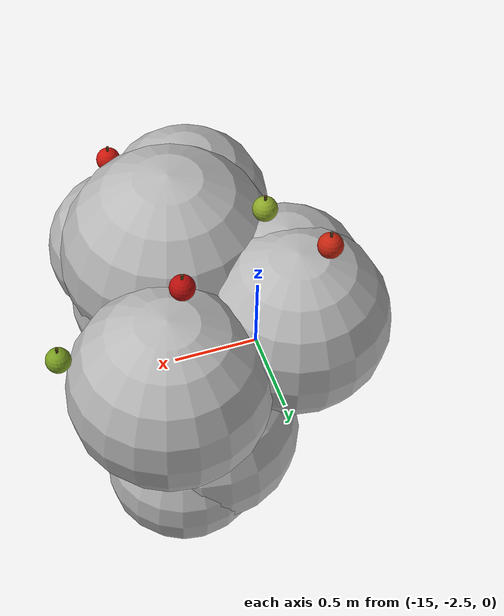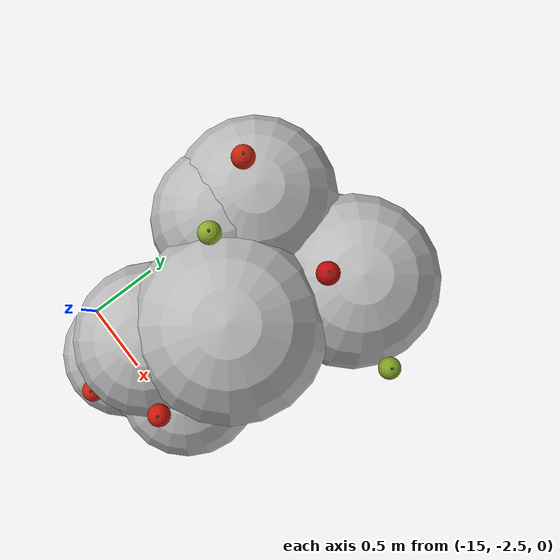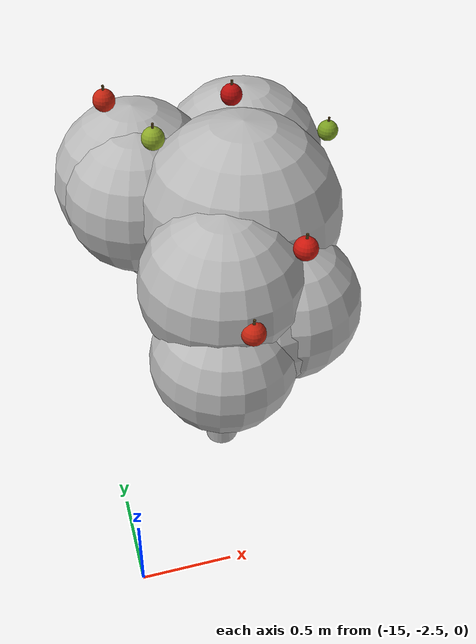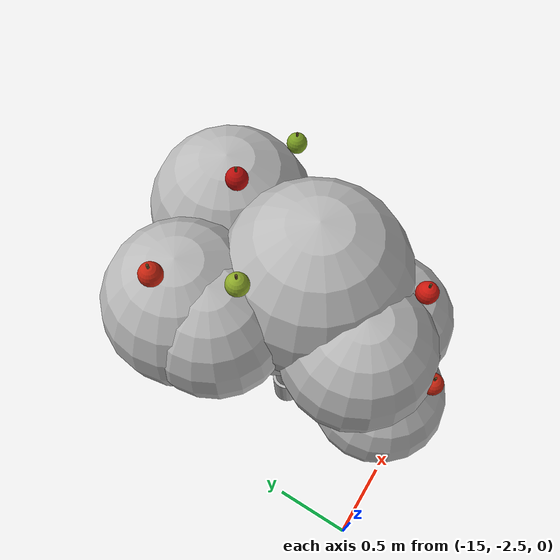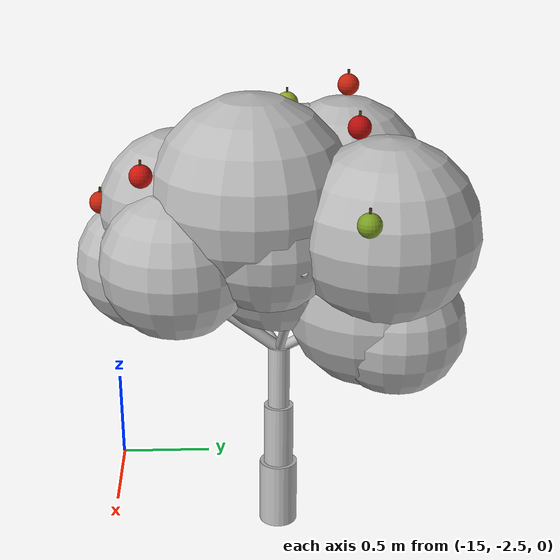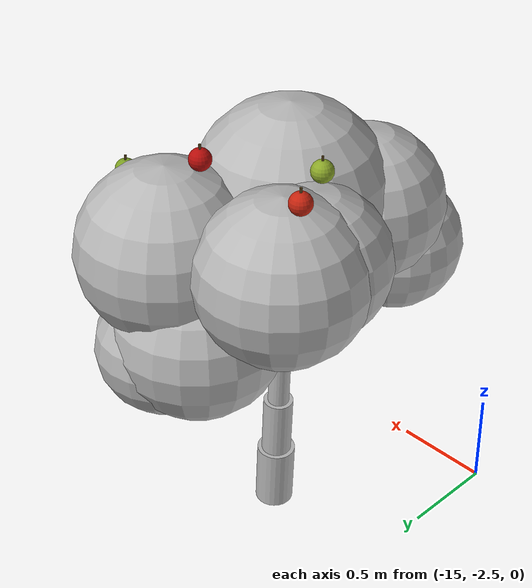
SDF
<sdf version="1.6">
 <world name="default">
  <model name="tree_r2_t1">
   <static>true</static>
   <link name="tree_r2_t1_trunk0">
    <pose>-14.3163 -1.6157 0.1642 -0.0051 -0.0521 0</pose>
    <collision name="tree_r2_t1_trunk0_c">
     <geometry><cylinder><radius>0.0985</radius><length>0.3480</length></cylinder></geometry>
    </collision>
    <visual name="tree_r2_t1_trunk0_v">
     <geometry><cylinder><radius>0.0985</radius><length>0.3480</length></cylinder></geometry>
     <material>
      <script>
       <uri>model://orchard/materials/scripts</uri>
       <uri>model://orchard/materials/textures</uri>
       <name>Orchard/Bark</name>
      </script>
     </material>
    </visual>
   </link>
   <link name="tree_r2_t1_trunk1">
    <pose>-14.3334 -1.6140 0.4925 -0.0051 -0.0521 0</pose>
    <visual name="tree_r2_t1_trunk1_v">
     <geometry><cylinder><radius>0.0768</radius><length>0.3480</length></cylinder></geometry>
     <material>
      <script>
       <uri>model://orchard/materials/scripts</uri>
       <uri>model://orchard/materials/textures</uri>
       <name>Orchard/Bark</name>
      </script>
     </material>
    </visual>
   </link>
   <link name="tree_r2_t1_trunk2">
    <pose>-14.3505 -1.6123 0.8208 -0.0051 -0.0521 0</pose>
    <visual name="tree_r2_t1_trunk2_v">
     <geometry><cylinder><radius>0.0551</radius><length>0.3480</length></cylinder></geometry>
     <material>
      <script>
       <uri>model://orchard/materials/scripts</uri>
       <uri>model://orchard/materials/textures</uri>
       <name>Orchard/Bark</name>
      </script>
     </material>
    </visual>
   </link>
   <link name="tree_r2_t1_br0">
    <pose>-14.1140 -1.5687 1.2986 0.0000 0.6704 0.1728</pose>
    <visual name="tree_r2_t1_br0_v">
     <geometry><cylinder><radius>0.0237</radius><length>0.8007</length></cylinder></geometry>
     <material>
      <script>
       <uri>model://orchard/materials/scripts</uri>
       <uri>model://orchard/materials/textures</uri>
       <name>Orchard/Bark</name>
      </script>
     </material>
    </visual>
   </link>
   <link name="tree_r2_t1_br1">
    <pose>-14.3491 -1.3482 1.1241 0.0000 1.0847 1.5328</pose>
    <visual name="tree_r2_t1_br1_v">
     <geometry><cylinder><radius>0.0277</radius><length>0.5959</length></cylinder></geometry>
     <material>
      <script>
       <uri>model://orchard/materials/scripts</uri>
       <uri>model://orchard/materials/textures</uri>
       <name>Orchard/Bark</name>
      </script>
     </material>
    </visual>
   </link>
   <link name="tree_r2_t1_br2">
    <pose>-14.6545 -1.4906 1.2355 0.0000 0.9052 2.7532</pose>
    <visual name="tree_r2_t1_br2_v">
     <geometry><cylinder><radius>0.0221</radius><length>0.8115</length></cylinder></geometry>
     <material>
      <script>
       <uri>model://orchard/materials/scripts</uri>
       <uri>model://orchard/materials/textures</uri>
       <name>Orchard/Bark</name>
      </script>
     </material>
    </visual>
   </link>
   <link name="tree_r2_t1_br3">
    <pose>-14.5337 -1.8411 1.2830 0.0000 0.7690 4.0622</pose>
    <visual name="tree_r2_t1_br3_v">
     <geometry><cylinder><radius>0.0243</radius><length>0.8298</length></cylinder></geometry>
     <material>
      <script>
       <uri>model://orchard/materials/scripts</uri>
       <uri>model://orchard/materials/textures</uri>
       <name>Orchard/Bark</name>
      </script>
     </material>
    </visual>
   </link>
   <link name="tree_r2_t1_br4">
    <pose>-14.3455 -1.8484 1.1767 0.0000 0.8911 4.7696</pose>
    <visual name="tree_r2_t1_br4_v">
     <geometry><cylinder><radius>0.0313</radius><length>0.6102</length></cylinder></geometry>
     <material>
      <script>
       <uri>model://orchard/materials/scripts</uri>
       <uri>model://orchard/materials/textures</uri>
       <name>Orchard/Bark</name>
      </script>
     </material>
    </visual>
   </link>
   <link name="tree_r2_t1_fol0">
    <pose>-14.3075 -2.1195 1.5104 0 0 0</pose>
    <visual name="tree_r2_t1_fol0_v">
     <geometry><sphere><radius>0.3658</radius></sphere></geometry>
     <material>
      <script>
       <uri>model://orchard/materials/scripts</uri>
       <uri>model://orchard/materials/textures</uri>
       <name>Orchard/Foliage3</name>
      </script>
     </material>
    </visual>
   </link>
   <link name="tree_r2_t1_fol1">
    <pose>-14.7255 -1.4474 1.7831 0 0 0</pose>
    <visual name="tree_r2_t1_fol1_v">
     <geometry><sphere><radius>0.3705</radius></sphere></geometry>
     <material>
      <script>
       <uri>model://orchard/materials/scripts</uri>
       <uri>model://orchard/materials/textures</uri>
       <name>Orchard/Foliage0</name>
      </script>
     </material>
    </visual>
   </link>
   <link name="tree_r2_t1_fol2">
    <pose>-14.2511 -1.1578 1.3036 0 0 0</pose>
    <visual name="tree_r2_t1_fol2_v">
     <geometry><sphere><radius>0.4318</radius></sphere></geometry>
     <material>
      <script>
       <uri>model://orchard/materials/scripts</uri>
       <uri>model://orchard/materials/textures</uri>
       <name>Orchard/Foliage2</name>
      </script>
     </material>
    </visual>
   </link>
   <link name="tree_r2_t1_fol3">
    <pose>-14.1313 -1.0527 1.2175 0 0 0</pose>
    <visual name="tree_r2_t1_fol3_v">
     <geometry><sphere><radius>0.3426</radius></sphere></geometry>
     <material>
      <script>
       <uri>model://orchard/materials/scripts</uri>
       <uri>model://orchard/materials/textures</uri>
       <name>Orchard/Foliage1</name>
      </script>
     </material>
    </visual>
   </link>
   <link name="tree_r2_t1_fol4">
    <pose>-14.5086 -2.2793 1.4188 0 0 0</pose>
    <visual name="tree_r2_t1_fol4_v">
     <geometry><sphere><radius>0.3469</radius></sphere></geometry>
     <material>
      <script>
       <uri>model://orchard/materials/scripts</uri>
       <uri>model://orchard/materials/textures</uri>
       <name>Orchard/Foliage0</name>
      </script>
     </material>
    </visual>
   </link>
   <link name="tree_r2_t1_fol5">
    <pose>-14.2892 -1.7439 1.8305 0 0 0</pose>
    <visual name="tree_r2_t1_fol5_v">
     <geometry><sphere><radius>0.4921</radius></sphere></geometry>
     <material>
      <script>
       <uri>model://orchard/materials/scripts</uri>
       <uri>model://orchard/materials/textures</uri>
       <name>Orchard/Foliage0</name>
      </script>
     </material>
    </visual>
   </link>
   <link name="tree_r2_t1_fol6">
    <pose>-14.1687 -2.1106 1.5371 0 0 0</pose>
    <visual name="tree_r2_t1_fol6_v">
     <geometry><sphere><radius>0.3660</radius></sphere></geometry>
     <material>
      <script>
       <uri>model://orchard/materials/scripts</uri>
       <uri>model://orchard/materials/textures</uri>
       <name>Orchard/Foliage1</name>
      </script>
     </material>
    </visual>
   </link>
   <link name="tree_r2_t1_fol7">
    <pose>-14.1780 -1.6685 1.6654 0 0 0</pose>
    <visual name="tree_r2_t1_fol7_v">
     <geometry><sphere><radius>0.3641</radius></sphere></geometry>
     <material>
      <script>
       <uri>model://orchard/materials/scripts</uri>
       <uri>model://orchard/materials/textures</uri>
       <name>Orchard/Foliage0</name>
      </script>
     </material>
    </visual>
   </link>
   <link name="tree_r2_t1_fol8">
    <pose>-14.7076 -1.2663 1.7783 0 0 0</pose>
    <visual name="tree_r2_t1_fol8_v">
     <geometry><sphere><radius>0.4197</radius></sphere></geometry>
     <material>
      <script>
       <uri>model://orchard/materials/scripts</uri>
       <uri>model://orchard/materials/textures</uri>
       <name>Orchard/Foliage0</name>
      </script>
     </material>
    </visual>
   </link>
   <link name="tree_r2_t1_fol9">
    <pose>-14.0971 -1.1233 1.7167 0 0 0</pose>
    <visual name="tree_r2_t1_fol9_v">
     <geometry><sphere><radius>0.4442</radius></sphere></geometry>
     <material>
      <script>
       <uri>model://orchard/materials/scripts</uri>
       <uri>model://orchard/materials/textures</uri>
       <name>Orchard/Foliage3</name>
      </script>
     </material>
    </visual>
   </link>
   <link name="tree_r2_t1_fol10">
    <pose>-14.4684 -2.0973 1.7108 0 0 0</pose>
    <visual name="tree_r2_t1_fol10_v">
     <geometry><sphere><radius>0.3946</radius></sphere></geometry>
     <material>
      <script>
       <uri>model://orchard/materials/scripts</uri>
       <uri>model://orchard/materials/textures</uri>
       <name>Orchard/Foliage3</name>
      </script>
     </material>
    </visual>
   </link>
   <link name="tree_r2_t1_fol11">
    <pose>-14.3487 -1.6159 1.5115 0 0 0</pose>
    <visual name="tree_r2_t1_fol11_v">
     <geometry><sphere><radius>0.3882</radius></sphere></geometry>
     <material>
      <script>
       <uri>model://orchard/materials/scripts</uri>
       <uri>model://orchard/materials/textures</uri>
       <name>Orchard/Foliage1</name>
      </script>
     </material>
    </visual>
   </link>
   <link name="tree_r2_t1_ap0">
    <pose>-14.4413 -2.4798 1.7541 0 0 0</pose>
    <visual name="tree_r2_t1_ap0_v">
     <geometry><sphere><radius>0.0550</radius></sphere></geometry>
     <material>
      <ambient>0.312 0.056 0.024 1.00</ambient>
      <diffuse>0.780 0.140 0.060 1.00</diffuse>
      <specular>0.45 0.35 0.32 1</specular>
     </material>
    </visual>
   </link>
   <link name="tree_r2_t1_st0">
    <pose>-14.4413 -2.4798 1.8063 0 0 0</pose>
    <visual name="tree_r2_t1_st0_v">
     <geometry><cylinder><radius>0.0060</radius><length>0.0500</length></cylinder></geometry>
     <material><ambient>0.128 0.096 0.040 1.00</ambient><diffuse>0.320 0.240 0.100 1.00</diffuse></material>
    </visual>
   </link>
   <link name="tree_r2_t1_ap1">
    <pose>-14.2001 -1.2528 2.1819 0 0 0</pose>
    <visual name="tree_r2_t1_ap1_v">
     <geometry><sphere><radius>0.0550</radius></sphere></geometry>
     <material>
      <ambient>0.288 0.020 0.016 1.00</ambient>
      <diffuse>0.720 0.050 0.040 1.00</diffuse>
      <specular>0.45 0.35 0.32 1</specular>
     </material>
    </visual>
   </link>
   <link name="tree_r2_t1_st1">
    <pose>-14.2001 -1.2528 2.2341 0 0 0</pose>
    <visual name="tree_r2_t1_st1_v">
     <geometry><cylinder><radius>0.0060</radius><length>0.0500</length></cylinder></geometry>
     <material><ambient>0.128 0.096 0.040 1.00</ambient><diffuse>0.320 0.240 0.100 1.00</diffuse></material>
    </visual>
   </link>
   <link name="tree_r2_t1_ap2">
    <pose>-13.6618 -1.2593 1.9058 0 0 0</pose>
    <visual name="tree_r2_t1_ap2_v">
     <geometry><sphere><radius>0.0550</radius></sphere></geometry>
     <material>
      <ambient>0.192 0.248 0.052 1.00</ambient>
      <diffuse>0.480 0.620 0.130 1.00</diffuse>
      <specular>0.45 0.35 0.32 1</specular>
     </material>
    </visual>
   </link>
   <link name="tree_r2_t1_st2">
    <pose>-13.6618 -1.2593 1.9581 0 0 0</pose>
    <visual name="tree_r2_t1_st2_v">
     <geometry><cylinder><radius>0.0060</radius><length>0.0500</length></cylinder></geometry>
     <material><ambient>0.128 0.096 0.040 1.00</ambient><diffuse>0.320 0.240 0.100 1.00</diffuse></material>
    </visual>
   </link>
   <link name="tree_r2_t1_ap3">
    <pose>-14.6620 -1.5618 2.1822 0 0 0</pose>
    <visual name="tree_r2_t1_ap3_v">
     <geometry><sphere><radius>0.0550</radius></sphere></geometry>
     <material>
      <ambient>0.220 0.264 0.064 1.00</ambient>
      <diffuse>0.550 0.660 0.160 1.00</diffuse>
      <specular>0.45 0.35 0.32 1</specular>
     </material>
    </visual>
   </link>
   <link name="tree_r2_t1_st3">
    <pose>-14.6620 -1.5618 2.2344 0 0 0</pose>
    <visual name="tree_r2_t1_st3_v">
     <geometry><cylinder><radius>0.0060</radius><length>0.0500</length></cylinder></geometry>
     <material><ambient>0.128 0.096 0.040 1.00</ambient><diffuse>0.320 0.240 0.100 1.00</diffuse></material>
    </visual>
   </link>
   <link name="tree_r2_t1_ap4">
    <pose>-14.8333 -1.2432 2.2298 0 0 0</pose>
    <visual name="tree_r2_t1_ap4_v">
     <geometry><sphere><radius>0.0550</radius></sphere></geometry>
     <material>
      <ambient>0.312 0.056 0.024 1.00</ambient>
      <diffuse>0.780 0.140 0.060 1.00</diffuse>
      <specular>0.45 0.35 0.32 1</specular>
     </material>
    </visual>
   </link>
   <link name="tree_r2_t1_st4">
    <pose>-14.8333 -1.2432 2.2820 0 0 0</pose>
    <visual name="tree_r2_t1_st4_v">
     <geometry><cylinder><radius>0.0060</radius><length>0.0500</length></cylinder></geometry>
     <material><ambient>0.128 0.096 0.040 1.00</ambient><diffuse>0.320 0.240 0.100 1.00</diffuse></material>
    </visual>
   </link>
   <link name="tree_r2_t1_ap5">
    <pose>-14.1504 -2.2561 1.9771 0 0 0</pose>
    <visual name="tree_r2_t1_ap5_v">
     <geometry><sphere><radius>0.0550</radius></sphere></geometry>
     <material>
      <ambient>0.320 0.036 0.020 1.00</ambient>
      <diffuse>0.800 0.090 0.050 1.00</diffuse>
      <specular>0.45 0.35 0.32 1</specular>
     </material>
    </visual>
   </link>
   <link name="tree_r2_t1_st5">
    <pose>-14.1504 -2.2561 2.0294 0 0 0</pose>
    <visual name="tree_r2_t1_st5_v">
     <geometry><cylinder><radius>0.0060</radius><length>0.0500</length></cylinder></geometry>
     <material><ambient>0.128 0.096 0.040 1.00</ambient><diffuse>0.320 0.240 0.100 1.00</diffuse></material>
    </visual>
   </link>
  </model>
 </world>
</sdf>
